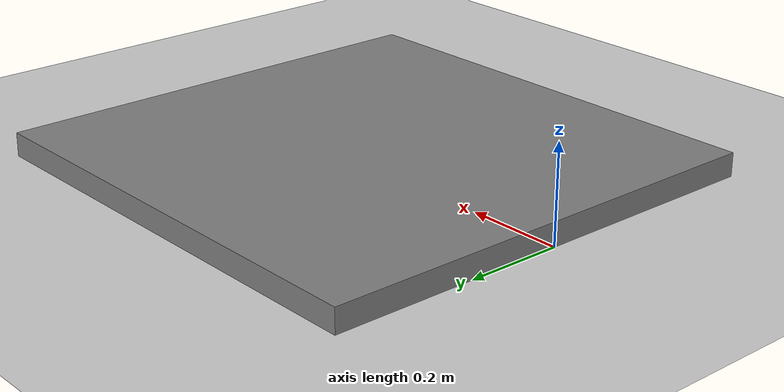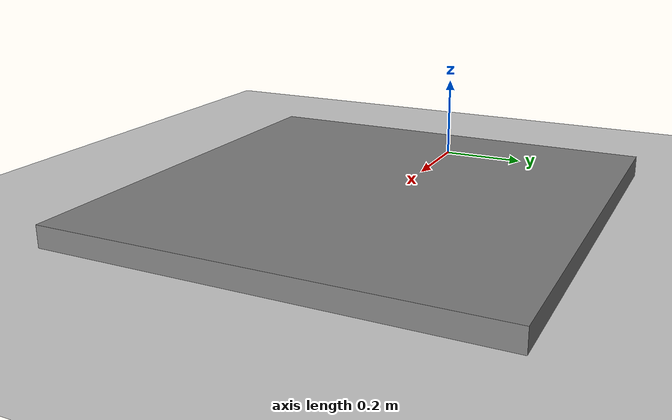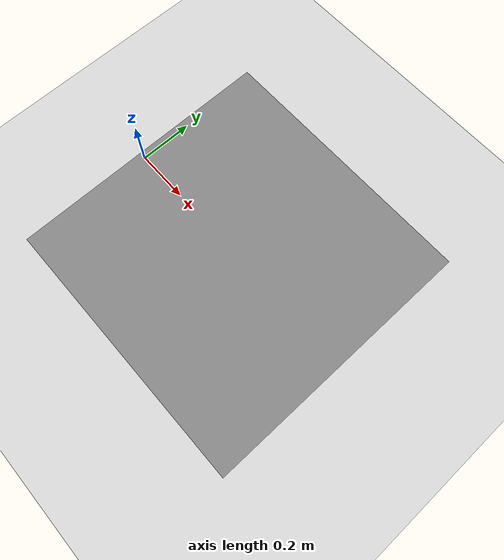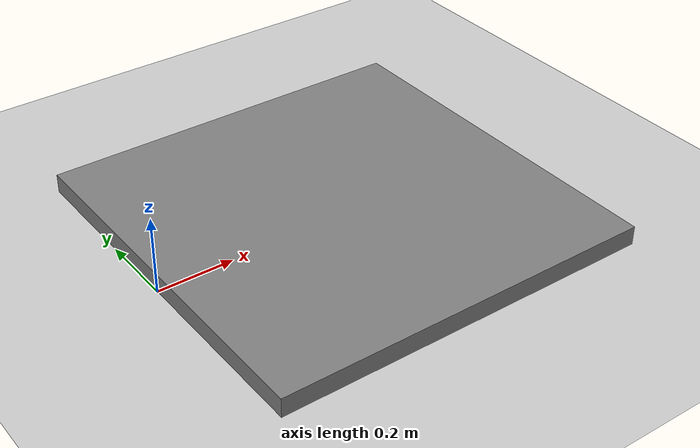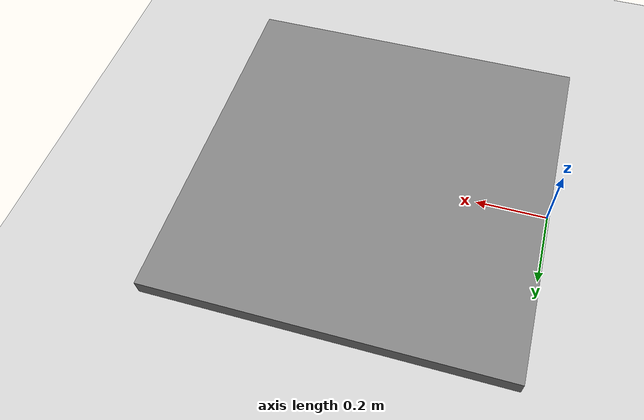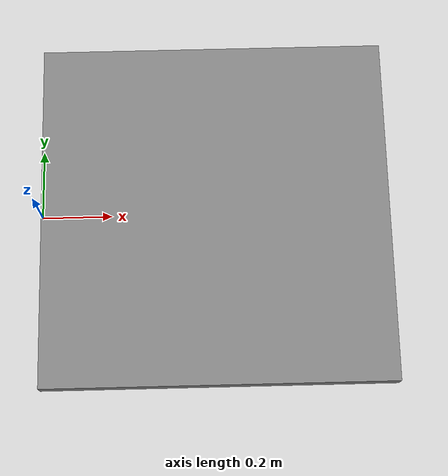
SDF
<?xml version="1.0" ?>
<sdf version="1.6">
  <world name="robotic_arm_world">
    <!-- 添加地面 -->
    <include>
      <uri>model://ground_plane</uri>
    </include>

    <!-- 添加光源 -->
    <include>
      <uri>model://sun</uri>
    </include>

    <!-- 设置物理属性 -->
    <physics type="ode">
      <max_step_size>0.001</max_step_size>
      <real_time_factor>1</real_time_factor>
      <real_time_update_rate>1000</real_time_update_rate>
      <gravity>0 0 -9.8</gravity>
    </physics>

    <!-- 添加一个桌子 -->
    <model name="table">
      <static>true</static>
      <link name="link">
        <collision name="collision">
          <geometry>
            <box>
              <size>1.0 1.0 0.05</size>
            </box>
          </geometry>
        </collision>
        <visual name="visual">
          <geometry>
            <box>
              <size>1.0 1.0 0.05</size>
            </box>
          </geometry>
          <material>
            <ambient>0.5 0.5 0.5 1</ambient>
            <diffuse>0.5 0.5 0.5 1</diffuse>
          </material>
        </visual>
      </link>
      <pose>0.5 0 0.025 0 0 0</pose>
    </model>
  </world>
</sdf>
